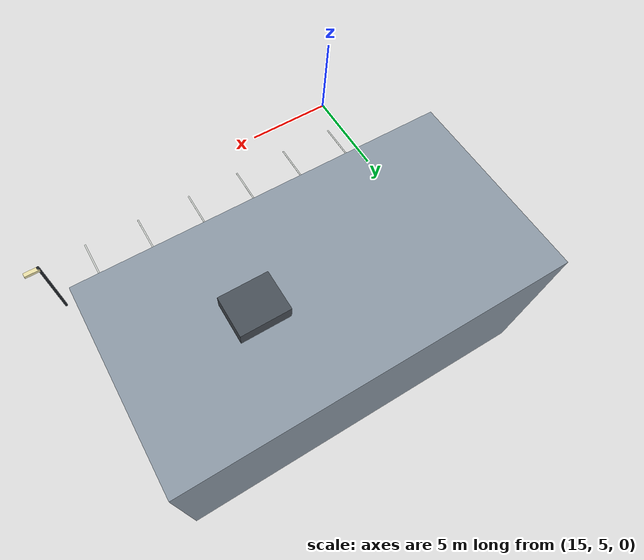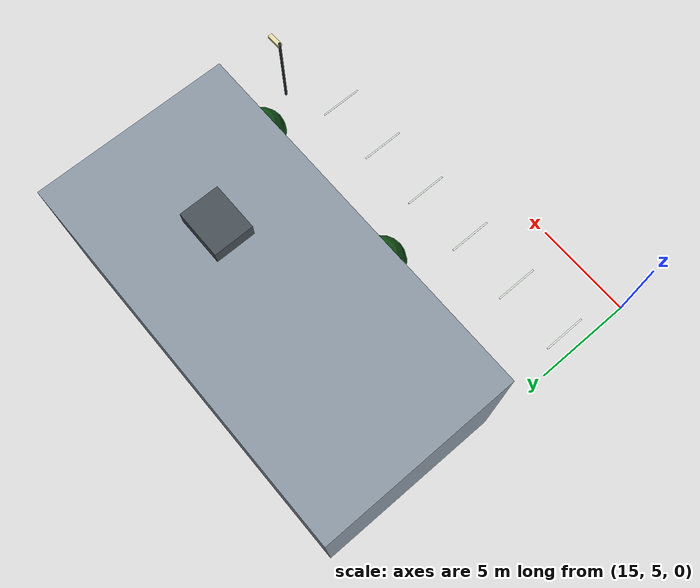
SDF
<sdf version="1.9">
 <world name="sanitation_campus_medium">
  <model name="parking_line_1_4">
   <static>true</static>
   <pose>15.8 7.9 0.013 0 0 0</pose>
   <link name="link">
    <visual name="visual">
     <geometry><box><size>0.08 2.2 0.012</size></box></geometry>
     <material>
      <ambient>0.86 0.88 0.86 1</ambient>
      <diffuse>0.86 0.88 0.86 1</diffuse>
      <specular>0.04 0.04 0.04 1</specular>
     </material>
    </visual>
   </link>
  </model>
  <model name="parking_line_1_5">
   <static>true</static>
   <pose>19.0 7.9 0.013 0 0 0</pose>
   <link name="link">
    <visual name="visual">
     <geometry><box><size>0.08 2.2 0.012</size></box></geometry>
     <material>
      <ambient>0.86 0.88 0.86 1</ambient>
      <diffuse>0.86 0.88 0.86 1</diffuse>
      <specular>0.04 0.04 0.04 1</specular>
     </material>
    </visual>
   </link>
  </model>
  <model name="parking_line_1_6">
   <static>true</static>
   <pose>22.200000000000003 7.9 0.013 0 0 0</pose>
   <link name="link">
    <visual name="visual">
     <geometry><box><size>0.08 2.2 0.012</size></box></geometry>
     <material>
      <ambient>0.86 0.88 0.86 1</ambient>
      <diffuse>0.86 0.88 0.86 1</diffuse>
      <specular>0.04 0.04 0.04 1</specular>
     </material>
    </visual>
   </link>
  </model>
  <model name="parking_line_1_7">
   <static>true</static>
   <pose>25.400000000000002 7.9 0.013 0 0 0</pose>
   <link name="link">
    <visual name="visual">
     <geometry><box><size>0.08 2.2 0.012</size></box></geometry>
     <material>
      <ambient>0.86 0.88 0.86 1</ambient>
      <diffuse>0.86 0.88 0.86 1</diffuse>
      <specular>0.04 0.04 0.04 1</specular>
     </material>
    </visual>
   </link>
  </model>
  <model name="parking_line_1_8">
   <static>true</static>
   <pose>28.6 7.9 0.013 0 0 0</pose>
   <link name="link">
    <visual name="visual">
     <geometry><box><size>0.08 2.2 0.012</size></box></geometry>
     <material>
      <ambient>0.86 0.88 0.86 1</ambient>
      <diffuse>0.86 0.88 0.86 1</diffuse>
      <specular>0.04 0.04 0.04 1</specular>
     </material>
    </visual>
   </link>
  </model>
  <model name="parking_line_1_9">
   <static>true</static>
   <pose>31.8 7.9 0.013 0 0 0</pose>
   <link name="link">
    <visual name="visual">
     <geometry><box><size>0.08 2.2 0.012</size></box></geometry>
     <material>
      <ambient>0.86 0.88 0.86 1</ambient>
      <diffuse>0.86 0.88 0.86 1</diffuse>
      <specular>0.04 0.04 0.04 1</specular>
     </material>
    </visual>
   </link>
  </model>
  <model name="building_north_2">
   <static>true</static>
   <pose>24.0 18.0 4.0 0 0 0</pose>
   <link name="link">
    <collision name="collision"><geometry><box><size>17.6 9.0 8.0</size></box></geometry></collision>
    <visual name="visual">
     <geometry><box><size>17.6 9.0 8.0</size></box></geometry>
     <material>
      <ambient>0.55 0.60 0.65 1</ambient>
      <diffuse>0.55 0.60 0.65 1</diffuse>
      <specular>0.04 0.04 0.04 1</specular>
     </material>
    </visual>
   </link>
  </model>
  <model name="glass_entry_north_2">
   <static>true</static>
   <pose>24.0 13.49 1.7 0 0 0</pose>
   <link name="link">
    <visual name="visual">
     <geometry><box><size>3.0 0.08 3.2</size></box></geometry>
     <material>
      <ambient>0.08 0.31 0.48 1</ambient>
      <diffuse>0.08 0.31 0.48 1</diffuse>
      <specular>0.04 0.04 0.04 1</specular>
     </material>
    </visual>
   </link>
  </model>
  <model name="roof_unit_north_2">
   <static>true</static>
   <pose>27.0 18.0 8.35 0 0 0</pose>
   <link name="link">
    <collision name="collision"><geometry><box><size>2.2 1.8 0.7</size></box></geometry></collision>
    <visual name="visual">
     <geometry><box><size>2.2 1.8 0.7</size></box></geometry>
     <material>
      <ambient>0.28 0.31 0.34 1</ambient>
      <diffuse>0.28 0.31 0.34 1</diffuse>
      <specular>0.04 0.04 0.04 1</specular>
     </material>
    </visual>
   </link>
  </model>
  <model name="tree_14">
   <static>true</static>
   <pose>23.29411764705882 12.7 0 0 0 0</pose>
   <link name="link">
    <collision name="trunk_collision">
     <geometry><cylinder><radius>0.18</radius><length>2.2</length></cylinder></geometry>
     <pose>0 0 1.1 0 0 0</pose>
    </collision>
    <visual name="trunk">
     <pose>0 0 1.1 0 0 0</pose>
     <geometry><cylinder><radius>0.18</radius><length>2.2</length></cylinder></geometry>
     <material>
      <ambient>0.30 0.17 0.07 1</ambient>
      <diffuse>0.30 0.17 0.07 1</diffuse>
      <specular>0.04 0.04 0.04 1</specular>
     </material>
    </visual>
    <visual name="crown">
     <pose>0 0 2.7 0 0 0</pose>
     <geometry><sphere><radius>1.15</radius></sphere></geometry>
     <material>
      <ambient>0.08 0.34 0.10 1</ambient>
      <diffuse>0.08 0.34 0.10 1</diffuse>
      <specular>0.04 0.04 0.04 1</specular>
     </material>
    </visual>
   </link>
  </model>
  <model name="tree_16">
   <static>true</static>
   <pose>31.764705882352942 12.7 0 0 0 0</pose>
   <link name="link">
    <collision name="trunk_collision">
     <geometry><cylinder><radius>0.18</radius><length>2.2</length></cylinder></geometry>
     <pose>0 0 1.1 0 0 0</pose>
    </collision>
    <visual name="trunk">
     <pose>0 0 1.1 0 0 0</pose>
     <geometry><cylinder><radius>0.18</radius><length>2.2</length></cylinder></geometry>
     <material>
      <ambient>0.30 0.17 0.07 1</ambient>
      <diffuse>0.30 0.17 0.07 1</diffuse>
      <specular>0.04 0.04 0.04 1</specular>
     </material>
    </visual>
    <visual name="crown">
     <pose>0 0 2.7 0 0 0</pose>
     <geometry><sphere><radius>1.15</radius></sphere></geometry>
     <material>
      <ambient>0.08 0.34 0.10 1</ambient>
      <diffuse>0.08 0.34 0.10 1</diffuse>
      <specular>0.04 0.04 0.04 1</specular>
     </material>
    </visual>
   </link>
  </model>
  <model name="lamp_post_03">
   <static>true</static>
   <pose>34.0 9.7 2.2 0 0 0</pose>
   <link name="link">
    <collision name="collision">
     <geometry><cylinder><radius>0.07</radius><length>4.4</length></cylinder></geometry>
    </collision>
    <visual name="visual">
     <geometry><cylinder><radius>0.07</radius><length>4.4</length></cylinder></geometry>
     <material>
      <ambient>0.12 0.14 0.16 1</ambient>
      <diffuse>0.12 0.14 0.16 1</diffuse>
      <specular>0.04 0.04 0.04 1</specular>
     </material>
    </visual>
   </link>
  </model>
  <model name="lamp_head_03">
   <static>true</static>
   <pose>34.35 9.7 4.25 0 0 0</pose>
   <link name="link">
    <visual name="visual">
     <geometry><box><size>0.75 0.22 0.16</size></box></geometry>
     <material>
      <ambient>0.92 0.88 0.66 1</ambient>
      <diffuse>0.92 0.88 0.66 1</diffuse>
      <specular>0.04 0.04 0.04 1</specular>
     </material>
    </visual>
   </link>
  </model>
 </world>
</sdf>
